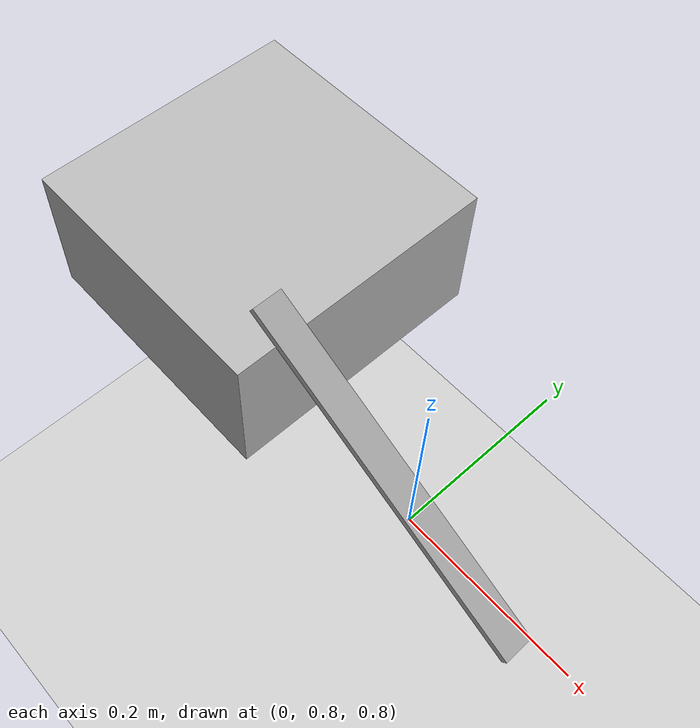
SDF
<?xml version="1.0" ?>

<sdf version="1.5">

  <world name="default">

    <gui>
      <camera name="user_default">
        <pose>-0.1984 2.4436 1.041 0 -0.064 -1.6107</pose>
      </camera>
    </gui>

    <!-- A global light source -->
    <include>
      <uri>model://sun</uri>
    </include>

    <!-- A ground plane -->
    <include>
      <uri>model://ground_plane</uri>
    </include>

    <!-- A ramp -->
    <model name="ramp">
      <static>true</static>
      <pose>-0.030595 0.802537 0.843767 0 0.5084 0</pose>
      <link name="ramp_link">
        <collision name="collision">
          <geometry>
            <box>
              <size>0.41 0.035 0.01</size>
            </box>
          </geometry>
        </collision>
        <visual name="visual">
          <geometry>
            <box>
              <size>0.41 0.035 0.01</size>
            </box>
          </geometry>
        </visual>
      </link>
    </model>

    <!-- A box -->
    <model name="box">
      <static>true</static>
      <pose>-0.335071 0.8985 0.835459 0 0 0</pose>
      <link name="box_link">
        <collision name="collision">
          <geometry>
            <box>
              <size>0.32 0.32 0.17</size>
            </box>
          </geometry>
        </collision>
        <visual name="visual">
          <geometry>
            <box>
              <size>0.32 0.32 0.17</size>
            </box>
          </geometry>
        </visual>
      </link>
    </model>

  </world>

</sdf>
